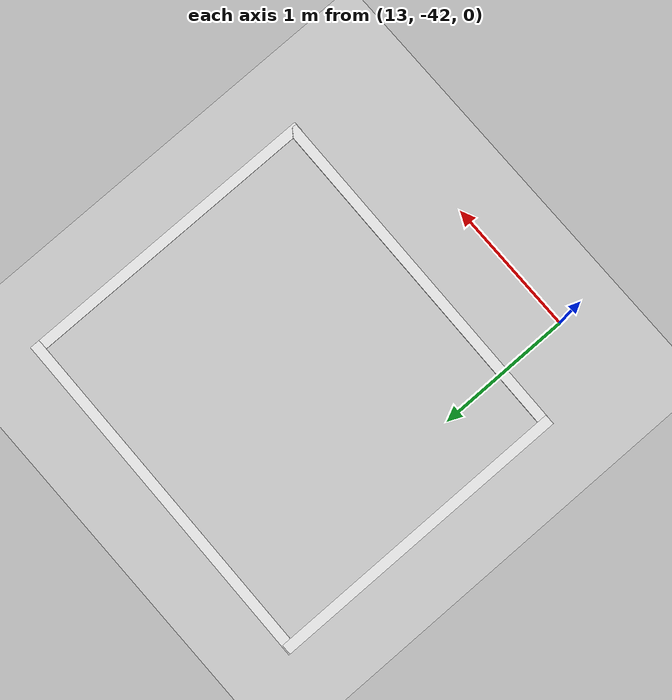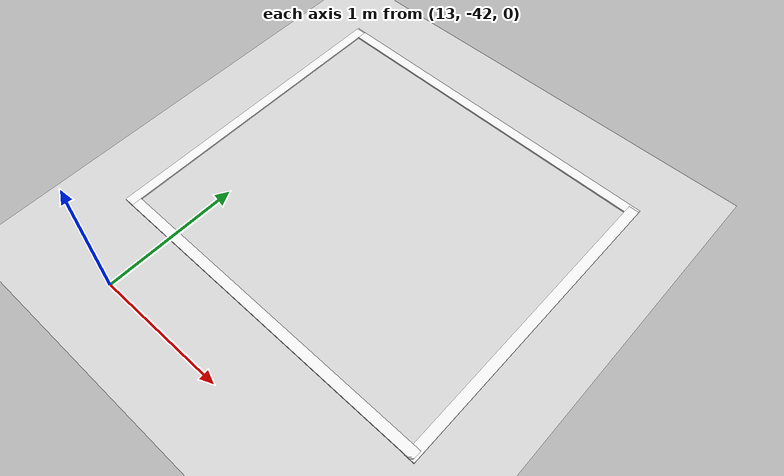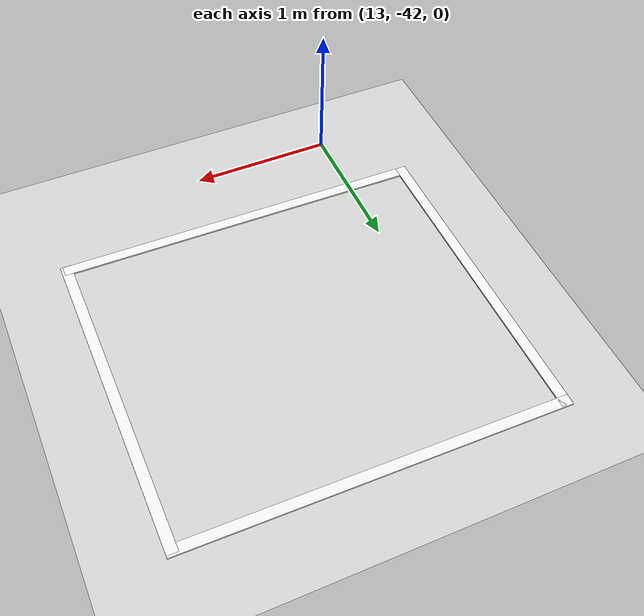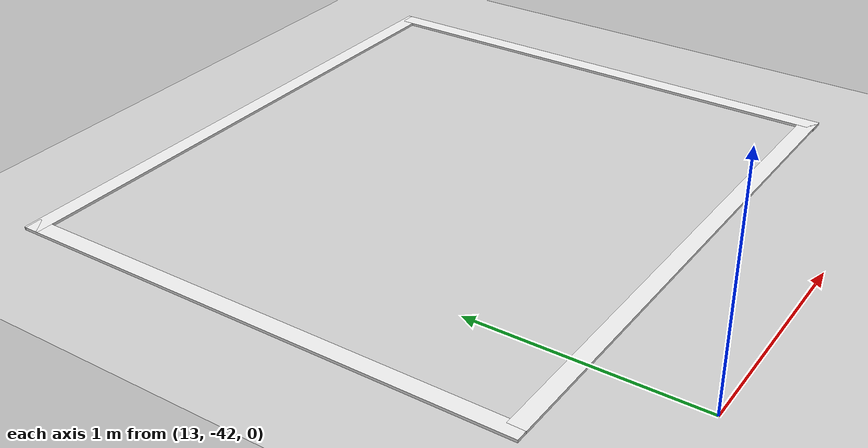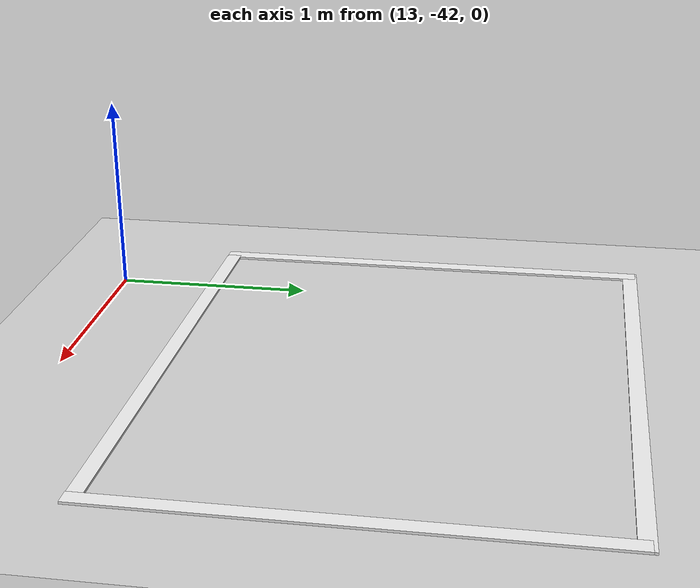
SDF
<sdf version="1.7">
 <world name="default">
  <model name="ground_plane">
   <static>1</static>
   <link name="link">
    <collision name="collision">
     <geometry><plane><normal>0 0 1</normal><size>5000 5000</size></plane></geometry>
     <surface><friction><ode><mu>100</mu><mu2>50</mu2></ode></friction></surface>
    </collision>
    <visual name="runway">
     <pose>0 0 0.005 0 -0 0</pose>
     <cast_shadows>0</cast_shadows>
     <geometry><plane><normal>0 0 1</normal><size>1829 45</size></plane></geometry>
     <material>
      <script><uri>file://media/materials/scripts/gazebo.material</uri><name>Gazebo/Runway</name></script>
     </material>
    </visual>
    <visual name="grass">
     <pose>0 0 -0.1 0 -0 0</pose>
     <cast_shadows>0</cast_shadows>
     <geometry><plane><normal>0 0 1</normal><size>5000 5000</size></plane></geometry>
     <material>
      <script><uri>file://media/materials/scripts/gazebo.material</uri><name>Gazebo/Grass</name></script>
     </material>
    </visual>
   </link>
  </model>
  <model name="Boundary_clone">
   <link name="link">
    <inertial>
     <mass>0.00213338</mass>
     <inertia>
      <ixx>0.000943506</ixx>
      <ixy>0</ixy>
      <ixz>0</ixz>
      <iyy>1.04116e-06</iyy>
      <iyz>0</iyz>
      <izz>0.000944494</izz>
     </inertia>
    </inertial>
    <pose>0.175947 -0.261673 -0.567861 0 -0 0</pose>
    <visual name="visual">
     <geometry><box><size>0.075545 2.30368 0.01222</size></box></geometry>
     <material>
      <script><name>Gazebo/White</name><uri>file://media/materials/scripts/gazebo.material</uri></script>
      <shader type="pixel"><normal_map>__default__</normal_map></shader>
      <ambient>1 1 1 1</ambient>
      <diffuse>1 1 1 1</diffuse>
      <specular>0 0 0 1</specular>
      <emissive>0 0 0 1</emissive>
     </material>
    </visual>
    <collision name="collision">
     <geometry><box><size>0.075545 2.30368 0.01222</size></box></geometry>
     <surface>
      <friction>
       <ode><mu>1</mu><mu2>1</mu2><fdir1>0 0 0</fdir1><slip1>0</slip1><slip2>0</slip2></ode>
       <torsional>
        <coefficient>1</coefficient>
        <patch_radius>0</patch_radius>
        <surface_radius>0</surface_radius>
        <use_patch_radius>1</use_patch_radius>
        <ode><slip>0</slip></ode>
       </torsional>
      </friction>
      <bounce><restitution_coefficient>0</restitution_coefficient><threshold>1e+06</threshold></bounce>
      <contact>
       <collide_without_contact>0</collide_without_contact>
       <collide_without_contact_bitmask>1</collide_without_contact_bitmask>
       <collide_bitmask>1</collide_bitmask>
       <ode>
        <soft_cfm>0</soft_cfm>
        <soft_erp>0.2</soft_erp>
        <kp>1e+13</kp>
        <kd>1</kd>
        <max_vel>0.01</max_vel>
        <min_depth>0</min_depth>
       </ode>
       <bullet>
        <split_impulse>1</split_impulse>
        <split_impulse_penetration_threshold>-0.01</split_impulse_penetration_threshold>
        <soft_cfm>0</soft_cfm>
        <soft_erp>0.2</soft_erp>
        <kp>1e+13</kp>
        <kd>1</kd>
       </bullet>
      </contact>
     </surface>
    </collision>
   </link>
   <link name="link_clone">
    <inertial>
     <mass>0.00213338</mass>
     <inertia>
      <ixx>0.000943506</ixx>
      <ixy>0</ixy>
      <ixz>0</ixz>
      <iyy>1.04116e-06</iyy>
      <iyz>0</iyz>
      <izz>0.000944494</izz>
     </inertia>
    </inertial>
    <pose>-2.39804 -0.222046 -0.567861 0 -0 0</pose>
    <visual name="visual">
     <geometry><box><size>0.075545 2.30368 0.01222</size></box></geometry>
     <material>
      <script><name>Gazebo/White</name><uri>file://media/materials/scripts/gazebo.material</uri></script>
      <shader type="pixel"><normal_map>__default__</normal_map></shader>
      <ambient>1 1 1 1</ambient>
      <diffuse>1 1 1 1</diffuse>
      <specular>0 0 0 1</specular>
      <emissive>0 0 0 1</emissive>
     </material>
    </visual>
    <collision name="collision">
     <geometry><box><size>0.075545 2.30368 0.01222</size></box></geometry>
     <surface>
      <friction>
       <ode><mu>1</mu><mu2>1</mu2><fdir1>0 0 0</fdir1><slip1>0</slip1><slip2>0</slip2></ode>
       <torsional>
        <coefficient>1</coefficient>
        <patch_radius>0</patch_radius>
        <surface_radius>0</surface_radius>
        <use_patch_radius>1</use_patch_radius>
        <ode><slip>0</slip></ode>
       </torsional>
      </friction>
      <bounce><restitution_coefficient>0</restitution_coefficient><threshold>1e+06</threshold></bounce>
      <contact>
       <collide_without_contact>0</collide_without_contact>
       <collide_without_contact_bitmask>1</collide_without_contact_bitmask>
       <collide_bitmask>1</collide_bitmask>
       <ode>
        <soft_cfm>0</soft_cfm>
        <soft_erp>0.2</soft_erp>
        <kp>1e+13</kp>
        <kd>1</kd>
        <max_vel>0.01</max_vel>
        <min_depth>0</min_depth>
       </ode>
       <bullet>
        <split_impulse>1</split_impulse>
        <split_impulse_penetration_threshold>-0.01</split_impulse_penetration_threshold>
        <soft_cfm>0</soft_cfm>
        <soft_erp>0.2</soft_erp>
        <kp>1e+13</kp>
        <kd>1</kd>
       </bullet>
      </contact>
     </surface>
    </collision>
   </link>
   <link name="link_clone_0">
    <inertial>
     <mass>0.00239117</mass>
     <inertia>
      <ixx>0.00132852</ixx>
      <ixy>0</ixy>
      <ixz>0</ixz>
      <iyy>1.16697e-06</iyy>
      <iyz>0</iyz>
      <izz>0.00132963</izz>
     </inertia>
    </inertial>
    <pose>-1.09378 -1.35543 -0.567861 0 -0 1.55668</pose>
    <visual name="visual">
     <geometry><box><size>0.075545 2.58205 0.01222</size></box></geometry>
     <material>
      <script><name>Gazebo/White</name><uri>file://media/materials/scripts/gazebo.material</uri></script>
      <shader type="pixel"><normal_map>__default__</normal_map></shader>
      <ambient>1 1 1 1</ambient>
      <diffuse>1 1 1 1</diffuse>
      <specular>0 0 0 1</specular>
      <emissive>0 0 0 1</emissive>
     </material>
    </visual>
    <collision name="collision">
     <geometry><box><size>0.075545 2.58205 0.01222</size></box></geometry>
     <surface>
      <friction>
       <ode><mu>1</mu><mu2>1</mu2><fdir1>0 0 0</fdir1><slip1>0</slip1><slip2>0</slip2></ode>
       <torsional>
        <coefficient>1</coefficient>
        <patch_radius>0</patch_radius>
        <surface_radius>0</surface_radius>
        <use_patch_radius>1</use_patch_radius>
        <ode><slip>0</slip></ode>
       </torsional>
      </friction>
      <bounce><restitution_coefficient>0</restitution_coefficient><threshold>1e+06</threshold></bounce>
      <contact>
       <collide_without_contact>0</collide_without_contact>
       <collide_without_contact_bitmask>1</collide_without_contact_bitmask>
       <collide_bitmask>1</collide_bitmask>
       <ode>
        <soft_cfm>0</soft_cfm>
        <soft_erp>0.2</soft_erp>
        <kp>1e+13</kp>
        <kd>1</kd>
        <max_vel>0.01</max_vel>
        <min_depth>0</min_depth>
       </ode>
       <bullet>
        <split_impulse>1</split_impulse>
        <split_impulse_penetration_threshold>-0.01</split_impulse_penetration_threshold>
        <soft_cfm>0</soft_cfm>
        <soft_erp>0.2</soft_erp>
        <kp>1e+13</kp>
        <kd>1</kd>
       </bullet>
      </contact>
     </surface>
    </collision>
   </link>
   <link name="link_clone_1">
    <inertial>
     <mass>0.00245251</mass>
     <inertia>
      <ixx>0.00143342</ixx>
      <ixy>0</ixy>
      <ixz>0</ixz>
      <iyy>1.1969e-06</iyy>
      <iyz>0</iyz>
      <izz>0.00143456</izz>
     </inertia>
    </inertial>
    <pose>-1.11066 0.884357 -0.567861 0 -0 1.55851</pose>
    <visual name="visual">
     <geometry><box><size>0.075545 2.6483 0.01222</size></box></geometry>
     <material>
      <script><name>Gazebo/White</name><uri>file://media/materials/scripts/gazebo.material</uri></script>
      <shader type="pixel"><normal_map>__default__</normal_map></shader>
      <ambient>1 1 1 1</ambient>
      <diffuse>1 1 1 1</diffuse>
      <specular>0 0 0 1</specular>
      <emissive>0 0 0 1</emissive>
     </material>
    </visual>
    <collision name="collision">
     <geometry><box><size>0.075545 2.6483 0.01222</size></box></geometry>
     <surface>
      <friction>
       <ode><mu>1</mu><mu2>1</mu2><fdir1>0 0 0</fdir1><slip1>0</slip1><slip2>0</slip2></ode>
       <torsional>
        <coefficient>1</coefficient>
        <patch_radius>0</patch_radius>
        <surface_radius>0</surface_radius>
        <use_patch_radius>1</use_patch_radius>
        <ode><slip>0</slip></ode>
       </torsional>
      </friction>
      <bounce><restitution_coefficient>0</restitution_coefficient><threshold>1e+06</threshold></bounce>
      <contact>
       <collide_without_contact>0</collide_without_contact>
       <collide_without_contact_bitmask>1</collide_without_contact_bitmask>
       <collide_bitmask>1</collide_bitmask>
       <ode>
        <soft_cfm>0</soft_cfm>
        <soft_erp>0.2</soft_erp>
        <kp>1e+13</kp>
        <kd>1</kd>
        <max_vel>0.01</max_vel>
        <min_depth>0</min_depth>
       </ode>
       <bullet>
        <split_impulse>1</split_impulse>
        <split_impulse_penetration_threshold>-0.01</split_impulse_penetration_threshold>
        <soft_cfm>0</soft_cfm>
        <soft_erp>0.2</soft_erp>
        <kp>1e+13</kp>
        <kd>1</kd>
       </bullet>
      </contact>
     </surface>
    </collision>
   </link>
   <static>0</static>
   <pose>14.9643 -40.1472 0.573908 0 -0.000295 0</pose>
  </model>
 </world>
</sdf>
